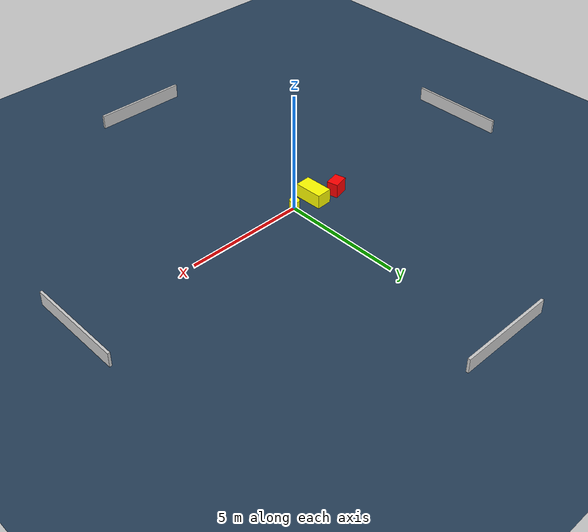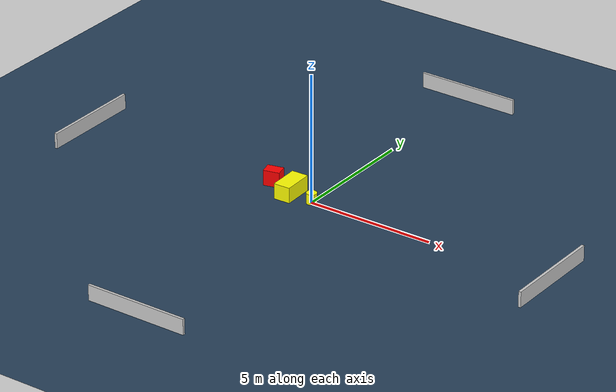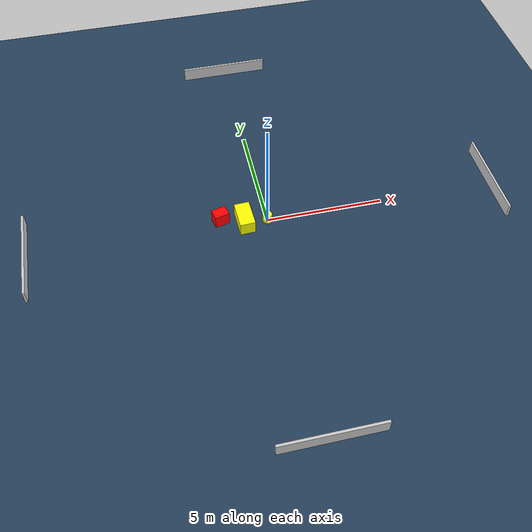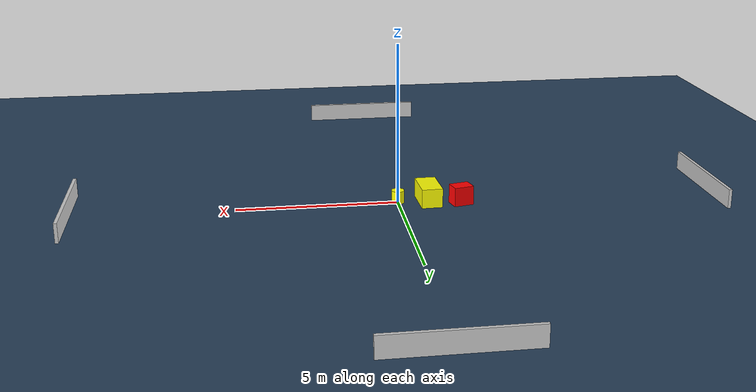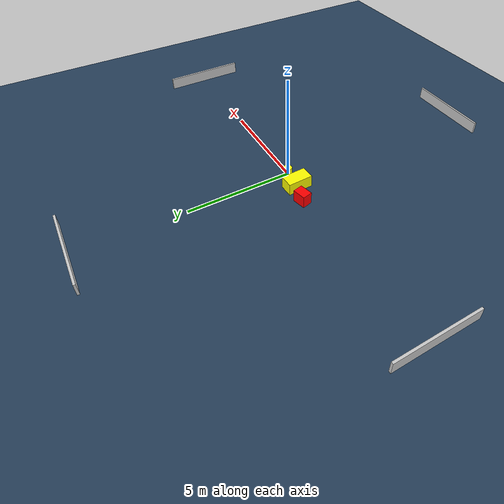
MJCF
<?xml version="1.0" ?>
<mujoco model="generated_environment">
  <option timestep="0.01" integrator="RK4" cone="elliptic"/>
  <default>
    <geom density="1"/>
  </default>
  <asset>
    <texture builtin="gradient" height="3072" name="skybox" rgb1="0.3 0.5 0.7" rgb2="0 0 0" type="skybox" width="512"/>
    <texture builtin="checker" height="300" name="groundplane" rgb1="0.2 0.3 0.4" rgb2="0.1 0.2 0.3" type="2d" width="300"/>
    <material name="groundplane" reflectance="0.2" texrepeat="5 5" texture="groundplane"/>
  </asset>
  <worldbody>
    <light dir="0 0 -1" directional="true" pos="0 0 1.5"/>
    <geom condim="3" friction="0.5 0.005 0.001" material="groundplane" name="floor" pos="0 0 0" size="0 0 0.05" type="plane"/>
    <body name="walls">
      <geom name="wall_1" condim="4" pos="-10.0 0.0 0.3" rgba="0.800000011920929 0.800000011920929 0.800000011920929 1.0" size="0.05 2.0 0.3" type="box"/>
      <geom name="wall_2" condim="4" pos="10.0 0.0 0.3" rgba="0.800000011920929 0.800000011920929 0.800000011920929 1.0" size="0.05 2.0 0.3" type="box"/>
      <geom name="wall_3" condim="4" pos="0.0 -10.0 0.3" rgba="0.800000011920929 0.800000011920929 0.800000011920929 1.0" size="2.0 0.05 0.3" type="box"/>
      <geom name="wall_4" condim="4" pos="0.0 10.0 0.3" rgba="0.800000011920929 0.800000011920929 0.800000011920929 1.0" size="2.0 0.05 0.3" type="box"/>
    </body>
    <body name="robot">
      <joint name="joint_x" type="slide" pos="0 0 0" axis="1 0 0"/>
      <joint name="joint_y" type="slide" pos="0 0 0" axis="0 1 0"/>
      <geom name="robot" type="cylinder" pos="0.0 0.0 0.2" size="0.2 0.2 0.0" mass="5.0" friction="1.0 0.005 0.0001" condim="4" rgba="1.0 1.0 0.0 1.0"/>
    </body>
    <body name="obstacle_1_movable">
      <geom name="obstacle_1_movable" condim="4" pos="-0.956347084712594 0.07360013005358566 0.3" euler="0 0 272.09103130471203" friction="0.0 0.005 0.001" rgba="1.0 1.0 0.0 1.0" size="0.5909495823218206 0.32470649100730753 0.3" type="box" mass="0.1"/>
      <joint type="free"/>
    </body>
    <body name="obstacle_2_static">
      <geom name="obstacle_2_static" condim="4" pos="-1.934630516344881 0.3728932096909911 0.3" euler="0 0 13.386434137888642" friction="0.0 0.005 0.001" rgba="1.0 0.0 0.0 1.0" size="0.3132980035587964 0.2329381939438423 0.3" type="box"/>
    </body>
  </worldbody>
  <actuator>
    <motor name="actuator_x" joint="joint_x" gear="1" ctrlrange="-1 1"/>
    <motor name="actuator_y" joint="joint_y" gear="1" ctrlrange="-1 1"/>
  </actuator>
</mujoco>
